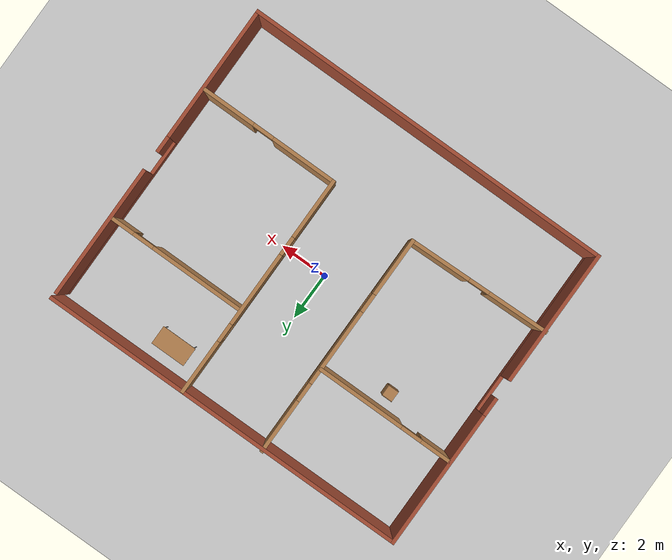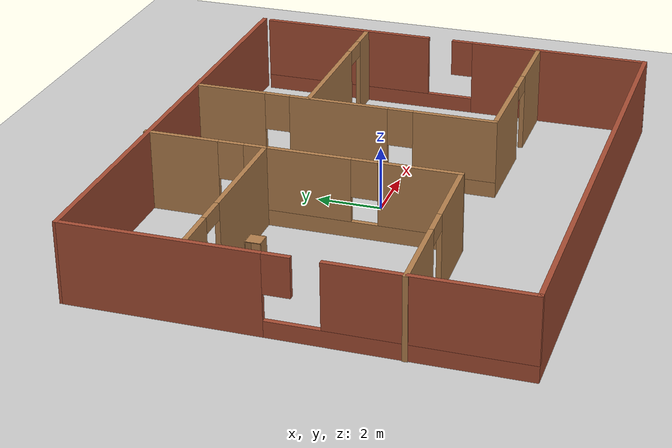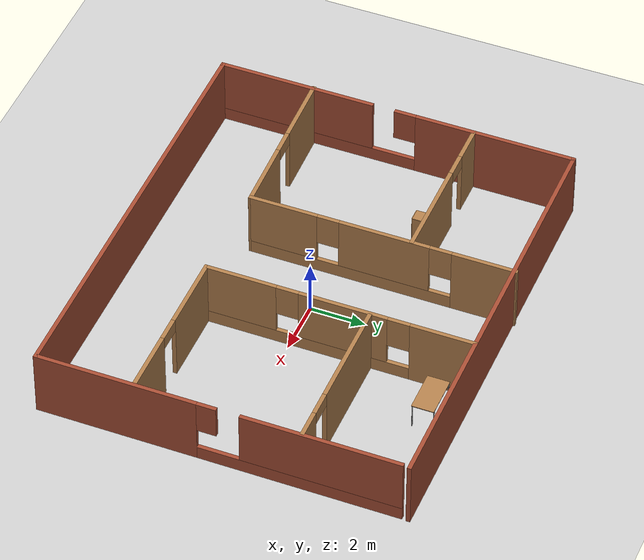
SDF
<sdf version="1.7">
 <world name="default">
  <light name="sun" type="directional">
   <pose>0 0 10 0 -0 0</pose>
   <diffuse>0.8 0.8 0.8 1</diffuse>
   <specular>0.2 0.2 0.2 1</specular>
   <attenuation>
    <range>1000</range>
    <constant>0.9</constant>
    <linear>0.01</linear>
    <quadratic>0.001</quadratic>
   </attenuation>
   <direction>-0.5 0.1 -0.9</direction>
   <spot><inner_angle>0</inner_angle><outer_angle>0</outer_angle><falloff>0</falloff></spot>
  </light>
  <model name="ground_plane">
   <static>1</static>
   <link name="link">
    <collision name="collision">
     <geometry><plane><normal>0 0 1</normal><size>100 100</size></plane></geometry>
     <surface><friction><ode><mu>100</mu><mu2>50</mu2></ode></friction></surface>
    </collision>
    <visual name="visual">
     <cast_shadows>0</cast_shadows>
     <geometry><plane><normal>0 0 1</normal><size>100 100</size></plane></geometry>
     <material>
      <script><uri>file://media/materials/scripts/gazebo.material</uri><name>Gazebo/Grey</name></script>
     </material>
    </visual>
   </link>
  </model>
  <gravity>0 0 -9.8</gravity>
  <magnetic_field>6e-06 2.3e-05 -4.2e-05</magnetic_field>
  <atmosphere type="adiabatic"/>
  <physics type="ode">
   <max_step_size>0.001</max_step_size>
   <real_time_factor>1</real_time_factor>
   <real_time_update_rate>1000</real_time_update_rate>
  </physics>
  <scene><ambient>0.4 0.4 0.4 1</ambient><background>0.7 0.7 0.7 1</background><shadows>1</shadows></scene>
  <audio><device>default</device></audio>
  <spherical_coordinates>
   <surface_model>EARTH_WGS84</surface_model>
   <latitude_deg>0</latitude_deg>
   <longitude_deg>0</longitude_deg>
   <elevation>0</elevation>
   <heading_deg>0</heading_deg>
  </spherical_coordinates>
  <model name="my_house">
   <pose>-0.072862 0.05039 0 0 -0 0</pose>
   <link name="Wall_0">
    <pose>-7.79129 -0.035179 0 0 -0 -1.5708</pose>
    <visual name="Wall_0_Visual_0">
     <pose>-3.68368 0 1.25 0 -0 0</pose>
     <geometry><box><size>5.88265 0.15 2.5</size></box></geometry>
     <material>
      <script><uri>file://media/materials/scripts/gazebo.material</uri><name>Gazebo/Bricks</name></script>
      <ambient>1 1 1 1</ambient>
     </material>
     <meta><layer>0</layer></meta>
    </visual>
    <collision name="Wall_0_Collision_0">
     <geometry><box><size>5.88265 0.15 2.5</size></box></geometry>
     <pose>-3.68368 0 1.25 0 -0 0</pose>
    </collision>
    <visual name="Wall_0_Visual_1">
     <pose>2.94132 0 0.25 0 -0 0</pose>
     <geometry><box><size>7.36735 0.15 0.5</size></box></geometry>
     <material>
      <script><uri>file://media/materials/scripts/gazebo.material</uri><name>Gazebo/Bricks</name></script>
      <ambient>1 1 1 1</ambient>
     </material>
     <meta><layer>0</layer></meta>
    </visual>
    <collision name="Wall_0_Collision_1">
     <geometry><box><size>7.36735 0.15 0.5</size></box></geometry>
     <pose>2.94132 0 0.25 0 -0 0</pose>
    </collision>
    <visual name="Wall_0_Visual_2">
     <pose>3.739 0 1.5 0 -0 0</pose>
     <geometry><box><size>5.77201 0.15 2</size></box></geometry>
     <material>
      <script><uri>file://media/materials/scripts/gazebo.material</uri><name>Gazebo/Bricks</name></script>
      <ambient>1 1 1 1</ambient>
     </material>
     <meta><layer>0</layer></meta>
    </visual>
    <collision name="Wall_0_Collision_2">
     <geometry><box><size>5.77201 0.15 2</size></box></geometry>
     <pose>3.739 0 1.5 0 -0 0</pose>
    </collision>
    <visual name="Wall_0_Visual_3">
     <pose>-0.344682 0 1.9 0 -0 0</pose>
     <geometry><box><size>0.795346 0.15 1.2</size></box></geometry>
     <material>
      <script><uri>file://media/materials/scripts/gazebo.material</uri><name>Gazebo/Bricks</name></script>
      <ambient>1 1 1 1</ambient>
     </material>
     <meta><layer>0</layer></meta>
    </visual>
    <collision name="Wall_0_Collision_3">
     <geometry><box><size>0.795346 0.15 1.2</size></box></geometry>
     <pose>-0.344682 0 1.9 0 -0 0</pose>
    </collision>
   </link>
   <link name="Wall_1">
    <collision name="Wall_1_Collision">
     <geometry><box><size>15.75 0.15 2.5</size></box></geometry>
     <pose>0 0 1.25 0 -0 0</pose>
    </collision>
    <visual name="Wall_1_Visual">
     <pose>0 0 1.25 0 -0 0</pose>
     <geometry><box><size>15.75 0.15 2.5</size></box></geometry>
     <material>
      <script><uri>file://media/materials/scripts/gazebo.material</uri><name>Gazebo/Bricks</name></script>
      <ambient>1 1 1 1</ambient>
     </material>
     <meta><layer>0</layer></meta>
    </visual>
    <pose>0.008713 -6.58518 0 0 -0 0</pose>
   </link>
   <link name="Wall_10">
    <pose>-4.79593 2.85623 0 0 -0 0</pose>
    <visual name="Wall_10_Visual_0">
     <pose>-2.32562 0 1.25 0 -0 0</pose>
     <geometry><box><size>1.34876 0.15 2.5</size></box></geometry>
     <material>
      <script><uri>file://media/materials/scripts/gazebo.material</uri><name>Gazebo/Wood</name></script>
      <ambient>1 1 1 1</ambient>
     </material>
     <meta><layer>0</layer></meta>
    </visual>
    <collision name="Wall_10_Collision_0">
     <geometry><box><size>1.34876 0.15 2.5</size></box></geometry>
     <pose>-2.32562 0 1.25 0 -0 0</pose>
    </collision>
    <visual name="Wall_10_Visual_1">
     <pose>1.12438 0 1.25 0 -0 0</pose>
     <geometry><box><size>3.75124 0.15 2.5</size></box></geometry>
     <material>
      <script><uri>file://media/materials/scripts/gazebo.material</uri><name>Gazebo/Wood</name></script>
      <ambient>1 1 1 1</ambient>
     </material>
     <meta><layer>0</layer></meta>
    </visual>
    <collision name="Wall_10_Collision_1">
     <geometry><box><size>3.75124 0.15 2.5</size></box></geometry>
     <pose>1.12438 0 1.25 0 -0 0</pose>
    </collision>
    <visual name="Wall_10_Visual_2">
     <pose>-1.20124 0 2.25 0 -0 0</pose>
     <geometry><box><size>0.9 0.15 0.5</size></box></geometry>
     <material>
      <script><uri>file://media/materials/scripts/gazebo.material</uri><name>Gazebo/Wood</name></script>
      <ambient>1 1 1 1</ambient>
     </material>
     <meta><layer>0</layer></meta>
    </visual>
    <collision name="Wall_10_Collision_2">
     <geometry><box><size>0.9 0.15 0.5</size></box></geometry>
     <pose>-1.20124 0 2.25 0 -0 0</pose>
    </collision>
   </link>
   <link name="Wall_12">
    <pose>1.84769 1.71482 0 0 -0 -1.5708</pose>
    <visual name="Wall_12_Visual_0">
     <pose>-3.70071 0 1.25 0 -0 0</pose>
     <geometry><box><size>2.34859 0.15 2.5</size></box></geometry>
     <material>
      <script><uri>file://media/materials/scripts/gazebo.material</uri><name>Gazebo/Wood</name></script>
      <ambient>1 1 1 1</ambient>
     </material>
     <meta><layer>0</layer></meta>
    </visual>
    <collision name="Wall_12_Collision_0">
     <geometry><box><size>2.34859 0.15 2.5</size></box></geometry>
     <pose>-3.70071 0 1.25 0 -0 0</pose>
    </collision>
    <visual name="Wall_12_Visual_1">
     <pose>1.17429 0 0.25 0 -0 0</pose>
     <geometry><box><size>7.40141 0.15 0.5</size></box></geometry>
     <material>
      <script><uri>file://media/materials/scripts/gazebo.material</uri><name>Gazebo/Wood</name></script>
      <ambient>1 1 1 1</ambient>
     </material>
     <meta><layer>0</layer></meta>
    </visual>
    <collision name="Wall_12_Collision_1">
     <geometry><box><size>7.40141 0.15 0.5</size></box></geometry>
     <pose>1.17429 0 0.25 0 -0 0</pose>
    </collision>
    <visual name="Wall_12_Visual_2">
     <pose>-0.138814 0 1.5 0 -0 0</pose>
     <geometry><box><size>3.1752 0.15 2</size></box></geometry>
     <material>
      <script><uri>file://media/materials/scripts/gazebo.material</uri><name>Gazebo/Wood</name></script>
      <ambient>1 1 1 1</ambient>
     </material>
     <meta><layer>0</layer></meta>
    </visual>
    <collision name="Wall_12_Collision_2">
     <geometry><box><size>3.1752 0.15 2</size></box></geometry>
     <pose>-0.138814 0 1.5 0 -0 0</pose>
    </collision>
    <visual name="Wall_12_Visual_3">
     <pose>3.56189 0 1.5 0 -0 0</pose>
     <geometry><box><size>2.62621 0.15 2</size></box></geometry>
     <material>
      <script><uri>file://media/materials/scripts/gazebo.material</uri><name>Gazebo/Wood</name></script>
      <ambient>1 1 1 1</ambient>
     </material>
     <meta><layer>0</layer></meta>
    </visual>
    <collision name="Wall_12_Collision_3">
     <geometry><box><size>2.62621 0.15 2</size></box></geometry>
     <pose>3.56189 0 1.5 0 -0 0</pose>
    </collision>
    <visual name="Wall_12_Visual_4">
     <pose>-2.12641 0 1.9 0 -0 0</pose>
     <geometry><box><size>0.8 0.15 1.2</size></box></geometry>
     <material>
      <script><uri>file://media/materials/scripts/gazebo.material</uri><name>Gazebo/Wood</name></script>
      <ambient>1 1 1 1</ambient>
     </material>
     <meta><layer>0</layer></meta>
    </visual>
    <collision name="Wall_12_Collision_4">
     <geometry><box><size>0.8 0.15 1.2</size></box></geometry>
     <pose>-2.12641 0 1.9 0 -0 0</pose>
    </collision>
    <visual name="Wall_12_Visual_5">
     <pose>1.84879 0 1.9 0 -0 0</pose>
     <geometry><box><size>0.8 0.15 1.2</size></box></geometry>
     <material>
      <script><uri>file://media/materials/scripts/gazebo.material</uri><name>Gazebo/Wood</name></script>
      <ambient>1 1 1 1</ambient>
     </material>
     <meta><layer>0</layer></meta>
    </visual>
    <collision name="Wall_12_Collision_5">
     <geometry><box><size>0.8 0.15 1.2</size></box></geometry>
     <pose>1.84879 0 1.9 0 -0 0</pose>
    </collision>
   </link>
   <link name="Wall_13">
    <pose>4.77269 -3.08518 0 0 -0 0</pose>
    <visual name="Wall_13_Visual_0">
     <pose>-1.58687 0 1.25 0 -0 0</pose>
     <geometry><box><size>2.82627 0.15 2.5</size></box></geometry>
     <material>
      <script><uri>file://media/materials/scripts/gazebo.material</uri><name>Gazebo/Wood</name></script>
      <ambient>1 1 1 1</ambient>
     </material>
     <meta><layer>0</layer></meta>
    </visual>
    <collision name="Wall_13_Collision_0">
     <geometry><box><size>2.82627 0.15 2.5</size></box></geometry>
     <pose>-1.58687 0 1.25 0 -0 0</pose>
    </collision>
    <visual name="Wall_13_Visual_1">
     <pose>1.86313 0 1.25 0 -0 0</pose>
     <geometry><box><size>2.27373 0.15 2.5</size></box></geometry>
     <material>
      <script><uri>file://media/materials/scripts/gazebo.material</uri><name>Gazebo/Wood</name></script>
      <ambient>1 1 1 1</ambient>
     </material>
     <meta><layer>0</layer></meta>
    </visual>
    <collision name="Wall_13_Collision_1">
     <geometry><box><size>2.27373 0.15 2.5</size></box></geometry>
     <pose>1.86313 0 1.25 0 -0 0</pose>
    </collision>
    <visual name="Wall_13_Visual_2">
     <pose>0.276268 0 2.25 0 -0 0</pose>
     <geometry><box><size>0.9 0.15 0.5</size></box></geometry>
     <material>
      <script><uri>file://media/materials/scripts/gazebo.material</uri><name>Gazebo/Wood</name></script>
      <ambient>1 1 1 1</ambient>
     </material>
     <meta><layer>0</layer></meta>
    </visual>
    <collision name="Wall_13_Collision_2">
     <geometry><box><size>0.9 0.15 0.5</size></box></geometry>
     <pose>0.276268 0 2.25 0 -0 0</pose>
    </collision>
   </link>
   <link name="Wall_15">
    <pose>4.80787 2.82105 0 0 -0 0</pose>
    <visual name="Wall_15_Visual_0">
     <pose>-0.971238 0 1.25 0 -0 0</pose>
     <geometry><box><size>4.05752 0.15 2.5</size></box></geometry>
     <material>
      <script><uri>file://media/materials/scripts/gazebo.material</uri><name>Gazebo/Wood</name></script>
      <ambient>1 1 1 1</ambient>
     </material>
     <meta><layer>0</layer></meta>
    </visual>
    <collision name="Wall_15_Collision_0">
     <geometry><box><size>4.05752 0.15 2.5</size></box></geometry>
     <pose>-0.971238 0 1.25 0 -0 0</pose>
    </collision>
    <visual name="Wall_15_Visual_1">
     <pose>2.47876 0 1.25 0 -0 0</pose>
     <geometry><box><size>1.04248 0.15 2.5</size></box></geometry>
     <material>
      <script><uri>file://media/materials/scripts/gazebo.material</uri><name>Gazebo/Wood</name></script>
      <ambient>1 1 1 1</ambient>
     </material>
     <meta><layer>0</layer></meta>
    </visual>
    <collision name="Wall_15_Collision_1">
     <geometry><box><size>1.04248 0.15 2.5</size></box></geometry>
     <pose>2.47876 0 1.25 0 -0 0</pose>
    </collision>
    <visual name="Wall_15_Visual_2">
     <pose>1.50752 0 2.25 0 -0 0</pose>
     <geometry><box><size>0.9 0.15 0.5</size></box></geometry>
     <material>
      <script><uri>file://media/materials/scripts/gazebo.material</uri><name>Gazebo/Wood</name></script>
      <ambient>1 1 1 1</ambient>
     </material>
     <meta><layer>0</layer></meta>
    </visual>
    <collision name="Wall_15_Collision_2">
     <geometry><box><size>0.9 0.15 0.5</size></box></geometry>
     <pose>1.50752 0 2.25 0 -0 0</pose>
    </collision>
   </link>
   <link name="Wall_2">
    <pose>7.80871 -0.160179 0 0 -0 1.5708</pose>
    <visual name="Wall_2_Visual_0">
     <pose>-3.5987 0 1.25 0 -0 0</pose>
     <geometry><box><size>5.8026 0.15 2.5</size></box></geometry>
     <material>
      <script><uri>file://media/materials/scripts/gazebo.material</uri><name>Gazebo/Bricks</name></script>
      <ambient>1 1 1 1</ambient>
     </material>
     <meta><layer>0</layer></meta>
    </visual>
    <collision name="Wall_2_Collision_0">
     <geometry><box><size>5.8026 0.15 2.5</size></box></geometry>
     <pose>-3.5987 0 1.25 0 -0 0</pose>
    </collision>
    <visual name="Wall_2_Visual_1">
     <pose>2.9013 0 0.25 0 -0 0</pose>
     <geometry><box><size>7.1974 0.15 0.5</size></box></geometry>
     <material>
      <script><uri>file://media/materials/scripts/gazebo.material</uri><name>Gazebo/Bricks</name></script>
      <ambient>1 1 1 1</ambient>
     </material>
     <meta><layer>0</layer></meta>
    </visual>
    <collision name="Wall_2_Collision_1">
     <geometry><box><size>7.1974 0.15 0.5</size></box></geometry>
     <pose>2.9013 0 0.25 0 -0 0</pose>
    </collision>
    <visual name="Wall_2_Visual_2">
     <pose>3.65309 0 1.5 0 -0 0</pose>
     <geometry><box><size>5.69383 0.15 2</size></box></geometry>
     <material>
      <script><uri>file://media/materials/scripts/gazebo.material</uri><name>Gazebo/Bricks</name></script>
      <ambient>1 1 1 1</ambient>
     </material>
     <meta><layer>0</layer></meta>
    </visual>
    <collision name="Wall_2_Collision_2">
     <geometry><box><size>5.69383 0.15 2</size></box></geometry>
     <pose>3.65309 0 1.5 0 -0 0</pose>
    </collision>
    <visual name="Wall_2_Visual_3">
     <pose>-0.345613 0 1.9 0 -0 0</pose>
     <geometry><box><size>0.703575 0.15 1.2</size></box></geometry>
     <material>
      <script><uri>file://media/materials/scripts/gazebo.material</uri><name>Gazebo/Bricks</name></script>
      <ambient>1 1 1 1</ambient>
     </material>
     <meta><layer>0</layer></meta>
    </visual>
    <collision name="Wall_2_Collision_3">
     <geometry><box><size>0.703575 0.15 1.2</size></box></geometry>
     <pose>-0.345613 0 1.9 0 -0 0</pose>
    </collision>
   </link>
   <link name="Wall_4">
    <collision name="Wall_4_Collision">
     <geometry><box><size>15.7694 0.15 2.5</size></box></geometry>
     <pose>0 0 1.25 0 -0 0</pose>
    </collision>
    <visual name="Wall_4_Visual">
     <pose>0 0 1.25 0 -0 0</pose>
     <geometry><box><size>15.7694 0.15 2.5</size></box></geometry>
     <material>
      <script><uri>file://media/materials/scripts/gazebo.material</uri><name>Gazebo/Bricks</name></script>
      <ambient>1 1 1 1</ambient>
     </material>
     <meta><layer>0</layer></meta>
    </visual>
    <pose>0.018398 6.53241 0 0 -0 -3.13934</pose>
   </link>
   <link name="Wall_6">
    <pose>-1.84608 1.78518 0 0 -0 -1.5708</pose>
    <visual name="Wall_6_Visual_0">
     <pose>-3.70071 0 1.25 0 -0 0</pose>
     <geometry><box><size>2.34859 0.15 2.5</size></box></geometry>
     <material>
      <script><uri>file://media/materials/scripts/gazebo.material</uri><name>Gazebo/Wood</name></script>
      <ambient>1 1 1 1</ambient>
     </material>
     <meta><layer>0</layer></meta>
    </visual>
    <collision name="Wall_6_Collision_0">
     <geometry><box><size>2.34859 0.15 2.5</size></box></geometry>
     <pose>-3.70071 0 1.25 0 -0 0</pose>
    </collision>
    <visual name="Wall_6_Visual_1">
     <pose>1.17429 0 0.25 0 -0 0</pose>
     <geometry><box><size>7.40141 0.15 0.5</size></box></geometry>
     <material>
      <script><uri>file://media/materials/scripts/gazebo.material</uri><name>Gazebo/Wood</name></script>
      <ambient>1 1 1 1</ambient>
     </material>
     <meta><layer>0</layer></meta>
    </visual>
    <collision name="Wall_6_Collision_1">
     <geometry><box><size>7.40141 0.15 0.5</size></box></geometry>
     <pose>1.17429 0 0.25 0 -0 0</pose>
    </collision>
    <visual name="Wall_6_Visual_2">
     <pose>-0.086046 0 1.5 0 -0 0</pose>
     <geometry><box><size>3.28074 0.15 2</size></box></geometry>
     <material>
      <script><uri>file://media/materials/scripts/gazebo.material</uri><name>Gazebo/Wood</name></script>
      <ambient>1 1 1 1</ambient>
     </material>
     <meta><layer>0</layer></meta>
    </visual>
    <collision name="Wall_6_Collision_2">
     <geometry><box><size>3.28074 0.15 2</size></box></geometry>
     <pose>-0.086046 0 1.5 0 -0 0</pose>
    </collision>
    <visual name="Wall_6_Visual_3">
     <pose>3.61466 0 1.5 0 -0 0</pose>
     <geometry><box><size>2.52068 0.15 2</size></box></geometry>
     <material>
      <script><uri>file://media/materials/scripts/gazebo.material</uri><name>Gazebo/Wood</name></script>
      <ambient>1 1 1 1</ambient>
     </material>
     <meta><layer>0</layer></meta>
    </visual>
    <collision name="Wall_6_Collision_3">
     <geometry><box><size>2.52068 0.15 2</size></box></geometry>
     <pose>3.61466 0 1.5 0 -0 0</pose>
    </collision>
    <visual name="Wall_6_Visual_4">
     <pose>-2.12641 0 1.9 0 -0 0</pose>
     <geometry><box><size>0.8 0.15 1.2</size></box></geometry>
     <material>
      <script><uri>file://media/materials/scripts/gazebo.material</uri><name>Gazebo/Wood</name></script>
      <ambient>1 1 1 1</ambient>
     </material>
     <meta><layer>0</layer></meta>
    </visual>
    <collision name="Wall_6_Collision_4">
     <geometry><box><size>0.8 0.15 1.2</size></box></geometry>
     <pose>-2.12641 0 1.9 0 -0 0</pose>
    </collision>
    <visual name="Wall_6_Visual_5">
     <pose>1.95432 0 1.9 0 -0 0</pose>
     <geometry><box><size>0.8 0.15 1.2</size></box></geometry>
     <material>
      <script><uri>file://media/materials/scripts/gazebo.material</uri><name>Gazebo/Wood</name></script>
      <ambient>1 1 1 1</ambient>
     </material>
     <meta><layer>0</layer></meta>
    </visual>
    <collision name="Wall_6_Collision_5">
     <geometry><box><size>0.8 0.15 1.2</size></box></geometry>
     <pose>1.95432 0 1.9 0 -0 0</pose>
    </collision>
   </link>
   <link name="Wall_8">
    <pose>-4.83627 -3.08708 0 0 -0 0.02416</pose>
    <visual name="Wall_8_Visual_0">
     <pose>-1.75891 0 1.25 0 -0 0</pose>
     <geometry><box><size>2.61432 0.15 2.5</size></box></geometry>
     <material>
      <script><uri>file://media/materials/scripts/gazebo.material</uri><name>Gazebo/Wood</name></script>
      <ambient>1 1 1 1</ambient>
     </material>
     <meta><layer>0</layer></meta>
    </visual>
    <collision name="Wall_8_Collision_0">
     <geometry><box><size>2.61432 0.15 2.5</size></box></geometry>
     <pose>-1.75891 0 1.25 0 -0 0</pose>
    </collision>
    <visual name="Wall_8_Visual_1">
     <pose>1.75716 0 1.25 0 -0 0</pose>
     <geometry><box><size>2.61781 0.15 2.5</size></box></geometry>
     <material>
      <script><uri>file://media/materials/scripts/gazebo.material</uri><name>Gazebo/Wood</name></script>
      <ambient>1 1 1 1</ambient>
     </material>
     <meta><layer>0</layer></meta>
    </visual>
    <collision name="Wall_8_Collision_1">
     <geometry><box><size>2.61781 0.15 2.5</size></box></geometry>
     <pose>1.75716 0 1.25 0 -0 0</pose>
    </collision>
    <visual name="Wall_8_Visual_2">
     <pose>-0.001746 0 2.25 0 -0 0</pose>
     <geometry><box><size>0.9 0.15 0.5</size></box></geometry>
     <material>
      <script><uri>file://media/materials/scripts/gazebo.material</uri><name>Gazebo/Wood</name></script>
      <ambient>1 1 1 1</ambient>
     </material>
     <meta><layer>0</layer></meta>
    </visual>
    <collision name="Wall_8_Collision_2">
     <geometry><box><size>0.9 0.15 0.5</size></box></geometry>
     <pose>-0.001746 0 2.25 0 -0 0</pose>
    </collision>
   </link>
   <static>1</static>
  </model>
  <model name="cabinet">
   <static>1</static>
   <link name="cabinet_bottom_plate">
    <inertial>
     <pose>0 0 -1 0 -0 0</pose>
     <inertia><ixx>2.05</ixx><ixy>0</ixy><ixz>0</ixz><iyy>2.05</iyy><iyz>0</iyz><izz>2.05</izz></inertia>
     <mass>25</mass>
    </inertial>
    <collision name="cabinet_bottom_plate_geom">
     <pose>0 0 0.01 0 -0 0</pose>
     <geometry><box><size>0.45 0.45 0.02</size></box></geometry>
    </collision>
    <visual name="cabinet_bottom_plate_geom_visual">
     <pose>0 0 0.01 0 -0 0</pose>
     <geometry><box><size>0.45 0.45 0.02</size></box></geometry>
     <material>
      <script><uri>file://media/materials/scripts/gazebo.material</uri><name>Gazebo/Wood</name></script>
     </material>
    </visual>
    <collision name="cabinet_bottom_plate_geom_cabinet_back_plate">
     <pose>0.235 0 0.51 0 -0 0</pose>
     <geometry><box><size>0.02 0.45 1.02</size></box></geometry>
    </collision>
    <visual name="cabinet_bottom_plate_geom_cabinet_back_plate_visual">
     <pose>0.235 0 0.51 0 -0 0</pose>
     <geometry><box><size>0.02 0.45 1.02</size></box></geometry>
     <material>
      <script><uri>file://media/materials/scripts/gazebo.material</uri><name>Gazebo/Wood</name></script>
     </material>
    </visual>
    <collision name="cabinet_bottom_plate_geom_cabinet_left_plate">
     <pose>0 0.235 0.51 0 -0 0</pose>
     <geometry><box><size>0.45 0.02 1.02</size></box></geometry>
    </collision>
    <visual name="cabinet_bottom_plate_geom_cabinet_left_plate_visual">
     <pose>0 0.235 0.51 0 -0 0</pose>
     <geometry><box><size>0.45 0.02 1.02</size></box></geometry>
     <material>
      <script><uri>file://media/materials/scripts/gazebo.material</uri><name>Gazebo/Wood</name></script>
     </material>
    </visual>
    <collision name="cabinet_bottom_plate_geom_cabinet_middle_plate">
     <pose>0 0 0.51 0 -0 0</pose>
     <geometry><box><size>0.45 0.45 0.02</size></box></geometry>
    </collision>
    <visual name="cabinet_bottom_plate_geom_cabinet_middle_plate_visual">
     <pose>0 0 0.51 0 -0 0</pose>
     <geometry><box><size>0.45 0.45 0.02</size></box></geometry>
     <material>
      <script><uri>file://media/materials/scripts/gazebo.material</uri><name>Gazebo/Wood</name></script>
     </material>
    </visual>
    <collision name="cabinet_bottom_plate_geom_cabinet_right_plate">
     <pose>0 -0.235 0.51 0 -0 0</pose>
     <geometry><box><size>0.45 0.02 1.02</size></box></geometry>
    </collision>
    <visual name="cabinet_bottom_plate_geom_cabinet_right_plate_visual">
     <pose>0 -0.235 0.51 0 -0 0</pose>
     <geometry><box><size>0.45 0.02 1.02</size></box></geometry>
     <material>
      <script><uri>file://media/materials/scripts/gazebo.material</uri><name>Gazebo/Wood</name></script>
     </material>
    </visual>
    <collision name="cabinet_bottom_plate_geom_cabinet_top_plate">
     <pose>0 0 1.01 0 -0 0</pose>
     <geometry><box><size>0.45 0.45 0.02</size></box></geometry>
    </collision>
    <visual name="cabinet_bottom_plate_geom_cabinet_top_plate_visual">
     <pose>0 0 1.01 0 -0 0</pose>
     <geometry><box><size>0.45 0.45 0.02</size></box></geometry>
     <material>
      <script><uri>file://media/materials/scripts/gazebo.material</uri><name>Gazebo/Wood</name></script>
     </material>
    </visual>
   </link>
   <pose>-4.68548 2.18982 0 0 -0 0</pose>
  </model>
  <model name="table">
   <static>1</static>
   <link name="link">
    <collision name="surface">
     <pose>0 0 1 0 -0 0</pose>
     <geometry><box><size>1.5 0.8 0.03</size></box></geometry>
     <surface><friction><ode><mu>0.6</mu><mu2>0.6</mu2></ode></friction></surface>
    </collision>
    <visual name="visual1">
     <pose>0 0 1 0 -0 0</pose>
     <geometry><box><size>1.5 0.8 0.03</size></box></geometry>
     <material>
      <script><uri>file://media/materials/scripts/gazebo.material</uri><name>Gazebo/Wood</name></script>
     </material>
    </visual>
    <collision name="front_left_leg">
     <pose>0.68 0.38 0.5 0 -0 0</pose>
     <geometry><cylinder><radius>0.02</radius><length>1</length></cylinder></geometry>
    </collision>
    <visual name="front_left_leg">
     <pose>0.68 0.38 0.5 0 -0 0</pose>
     <geometry><cylinder><radius>0.02</radius><length>1</length></cylinder></geometry>
     <material>
      <script><uri>file://media/materials/scripts/gazebo.material</uri><name>Gazebo/Grey</name></script>
     </material>
    </visual>
    <collision name="front_right_leg">
     <pose>0.68 -0.38 0.5 0 -0 0</pose>
     <geometry><cylinder><radius>0.02</radius><length>1</length></cylinder></geometry>
    </collision>
    <visual name="front_right_leg">
     <pose>0.68 -0.38 0.5 0 -0 0</pose>
     <geometry><cylinder><radius>0.02</radius><length>1</length></cylinder></geometry>
     <material>
      <script><uri>file://media/materials/scripts/gazebo.material</uri><name>Gazebo/Grey</name></script>
     </material>
    </visual>
    <collision name="back_right_leg">
     <pose>-0.68 -0.38 0.5 0 -0 0</pose>
     <geometry><cylinder><radius>0.02</radius><length>1</length></cylinder></geometry>
    </collision>
    <visual name="back_right_leg">
     <pose>-0.68 -0.38 0.5 0 -0 0</pose>
     <geometry><cylinder><radius>0.02</radius><length>1</length></cylinder></geometry>
     <material>
      <script><uri>file://media/materials/scripts/gazebo.material</uri><name>Gazebo/Grey</name></script>
     </material>
    </visual>
    <collision name="back_left_leg">
     <pose>-0.68 0.38 0.5 0 -0 0</pose>
     <geometry><cylinder><radius>0.02</radius><length>1</length></cylinder></geometry>
    </collision>
    <visual name="back_left_leg">
     <pose>-0.68 0.38 0.5 0 -0 0</pose>
     <geometry><cylinder><radius>0.02</radius><length>1</length></cylinder></geometry>
     <material>
      <script><uri>file://media/materials/scripts/gazebo.material</uri><name>Gazebo/Grey</name></script>
     </material>
    </visual>
   </link>
   <pose>3.12691 5.56072 0 0 -0 0</pose>
  </model>
 </world>
</sdf>
